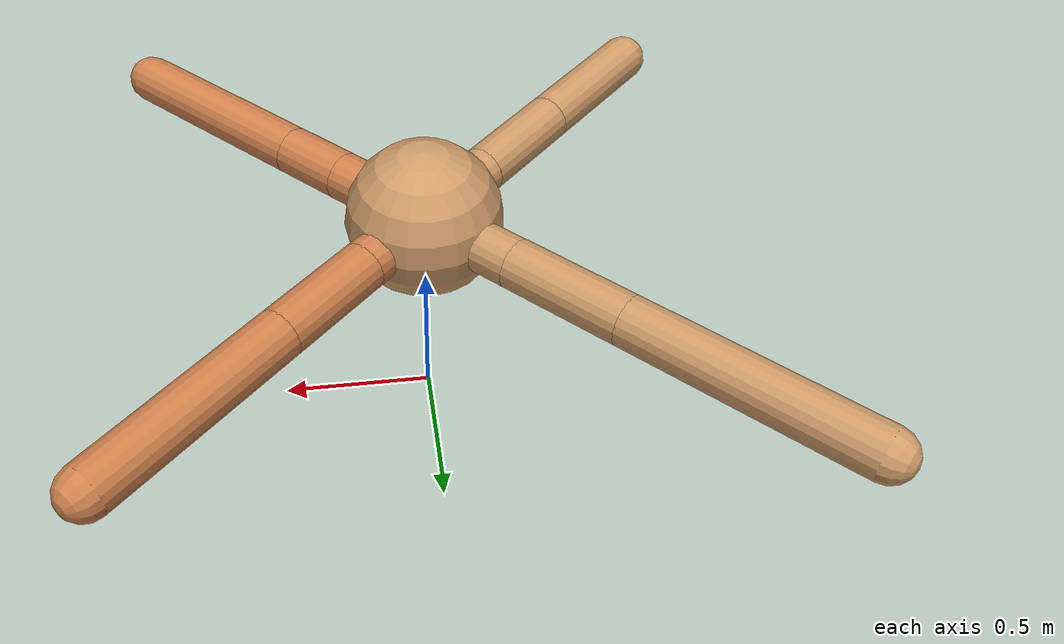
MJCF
<mujoco model="ant">
  <compiler angle="degree" coordinate="local" inertiafromgeom="true" />
  <option integrator="RK4" timestep="0.01" />
  <custom>
    <numeric data="0.0 0.0 0.55 1.0 0.0 0.0 0.0 0.0 1.0 0.0 -1.0 0.0 -1.0 0.0 1.0" name="init_qpos" />
  </custom>
  <default>
    <joint armature="1" damping="1" limited="true" />
    <geom conaffinity="0" condim="3" density="5.0" friction="1.5 0.1 0.1" margin="0.01" rgba="0.8 0.6 0.4 1" />
  </default>
  <worldbody>
    <body name="torso" pos="0 0 0.75">
      <geom name="torso_geom" pos="0 0 0" size="0.25" type="sphere" />

      <body name="front_left_leg" pos="0 0 0">
        <geom fromto="0.0 0.0 0.0 0.20289697806422688 0.20289697806422688 0.0" name="aux_1_geom" size="0.08" type="capsule" rgba=".8 .5 .3 1" />
        <body name="aux_1" pos="0.20289697806422688 0.20289697806422688 0.0">
          <joint axis="0 0 1" name="hip_1" pos="0.0 0.0 0.0" range="-40 40" type="hinge" />
          <geom fromto="0.0 0.0 0.0 0.24889156388855913 0.24889156388855913 0.0" name="left_leg_geom" size="0.08" type="capsule" rgba=".8 .5 .3 1" />
          <body pos="0.24889156388855913 0.24889156388855913 0.0" name="front_left_foot">
            <joint axis="-1 1 0" name="ankle_1" pos="0.0 0.0 0.0" range="30 100" type="hinge" />
            <geom fromto="0.0 0.0 0.0 0.4813981753446066 0.4813981753446066 0.0" name="left_ankle_geom" size="0.08" type="capsule" rgba=".8 .5 .3 1" />
          </body>
        </body>
      </body>
      <body name="front_right_leg" pos="0 0 0">
        <geom fromto="0.0 0.0 0.0 -0.24597945212632688 0.24597945212632688 0.0" name="aux_2_geom" size="0.08" type="capsule" />
        <body name="aux_2" pos="-0.24597945212632688 0.24597945212632688 0.0">
          <joint axis="0 0 1" name="hip_2" pos="0.0 0.0 0.0" range="-40 40" type="hinge" />
          <geom fromto="0.0 0.0 0.0 -0.27474190144859667 0.27474190144859667 0.0" name="right_leg_geom" size="0.08" type="capsule" />
          <body pos="-0.27474190144859667 0.27474190144859667 0.0" name="front_right_foot">
            <joint axis="1 1 0" name="ankle_2" pos="0.0 0.0 0.0" range="-100 -30" type="hinge" />
            <geom fromto="0.0 0.0 0.0 -0.5450428407429858 0.5450428407429858 0.0" name="right_ankle_geom" size="0.08" type="capsule" />
          </body>
        </body>
      </body>
      <body name="left_back_leg" pos="0 0 0">
        <geom fromto="0.0 0.0 0.0 -0.21457227824956357 -0.21457227824956357 0.0" name="aux_3_geom" size="0.08" type="capsule" />
        <body name="aux_3" pos="-0.21457227824956357 -0.21457227824956357 0.0">
          <joint axis="0 0 1" name="hip_3" pos="0.0 0.0 0.0" range="-40 40" type="hinge" />
          <geom fromto="0.0 0.0 0.0 -0.2619542414290633 -0.2619542414290633 0.0" name="back_leg_geom" size="0.08" type="capsule" />
          <body pos="-0.2619542414290633 -0.2619542414290633 0.0" name="left_back_foot">
            <joint axis="-1 1 0" name="ankle_3" pos="0.0 0.0 0.0" range="-100 -30" type="hinge" />
            <geom fromto="0.0 0.0 0.0 -0.3487530912026088 -0.3487530912026088 0.0" name="third_ankle_geom" size="0.08" type="capsule" />
          </body>
        </body>
      </body>
      <body name="right_back_leg" pos="0 0 0">
        <geom fromto="0.0 0.0 0.0 0.2398331058126706 -0.2398331058126706 0.0" name="aux_4_geom" size="0.08" type="capsule" rgba=".8 .5 .3 1" />
        <body name="aux_4" pos="0.2398331058126706 -0.2398331058126706 0.0">
          <joint axis="0 0 1" name="hip_4" pos="0.0 0.0 0.0" range="-40 40" type="hinge" />
          <geom fromto="0.0 0.0 0.0 0.15886013502253554 -0.15886013502253554 0.0" name="rightback_leg_geom" size="0.08" type="capsule" rgba=".8 .5 .3 1" />
          <body pos="0.15886013502253554 -0.15886013502253554 0.0" name="right_back_foot">
            <joint axis="1 1 0" name="ankle_4" pos="0.0 0.0 0.0" range="30 100" type="hinge" />
            <geom fromto="0.0 0.0 0.0 0.49933979133317874 -0.49933979133317874 0.0" name="fourth_ankle_geom" size="0.08" type="capsule" rgba=".8 .5 .3 1" />
          </body>
        </body>
      </body>
    </body>
  </worldbody>
  <actuator>
    <motor ctrllimited="true" ctrlrange="-1.0 1.0" joint="hip_4" gear="150" />
    <motor ctrllimited="true" ctrlrange="-1.0 1.0" joint="ankle_4" gear="150" />
    <motor ctrllimited="true" ctrlrange="-1.0 1.0" joint="hip_1" gear="150" />
    <motor ctrllimited="true" ctrlrange="-1.0 1.0" joint="ankle_1" gear="150" />
    <motor ctrllimited="true" ctrlrange="-1.0 1.0" joint="hip_2" gear="150" />
    <motor ctrllimited="true" ctrlrange="-1.0 1.0" joint="ankle_2" gear="150" />
    <motor ctrllimited="true" ctrlrange="-1.0 1.0" joint="hip_3" gear="150" />
    <motor ctrllimited="true" ctrlrange="-1.0 1.0" joint="ankle_3" gear="150" />
  </actuator>
</mujoco>
